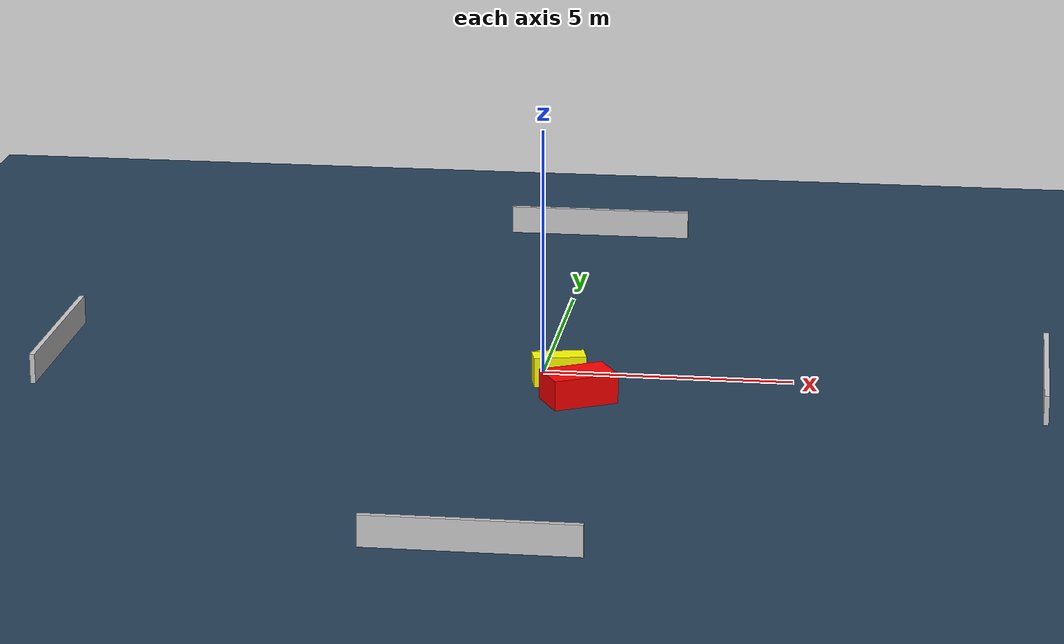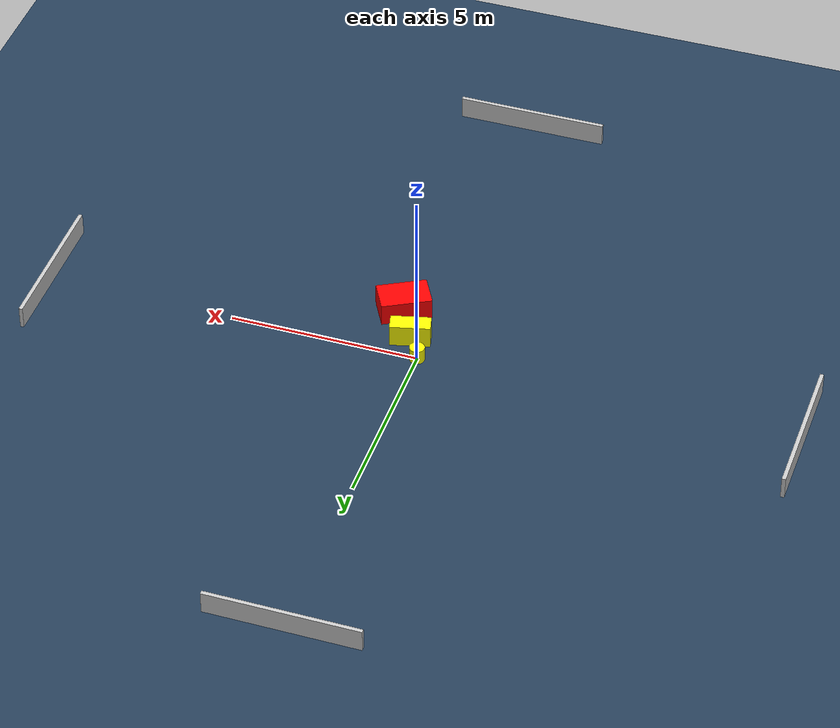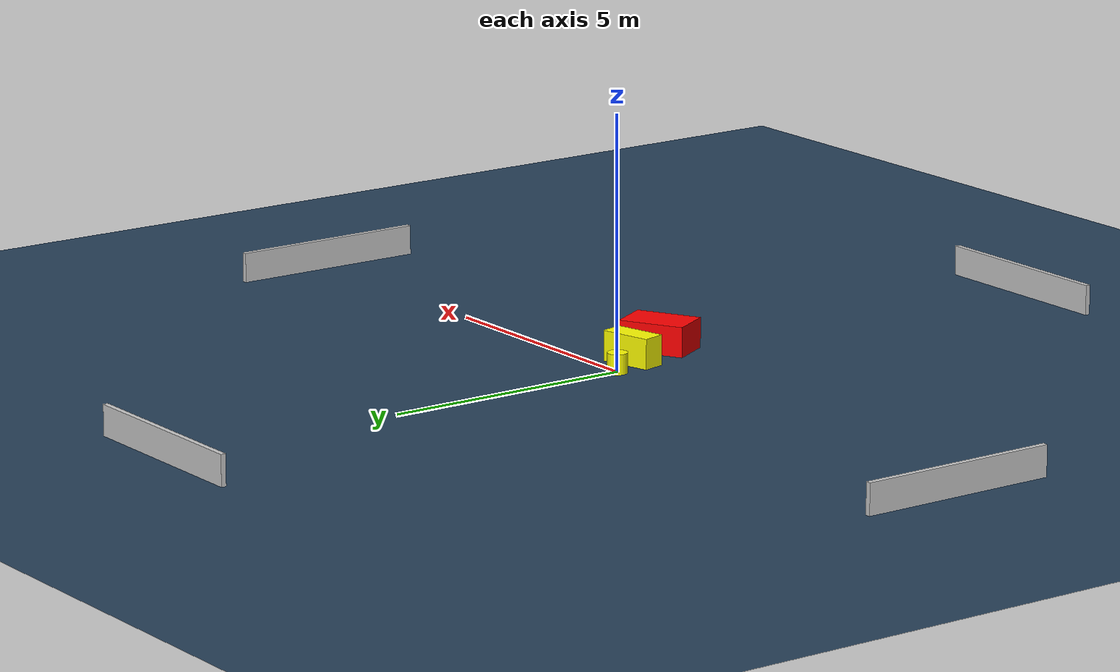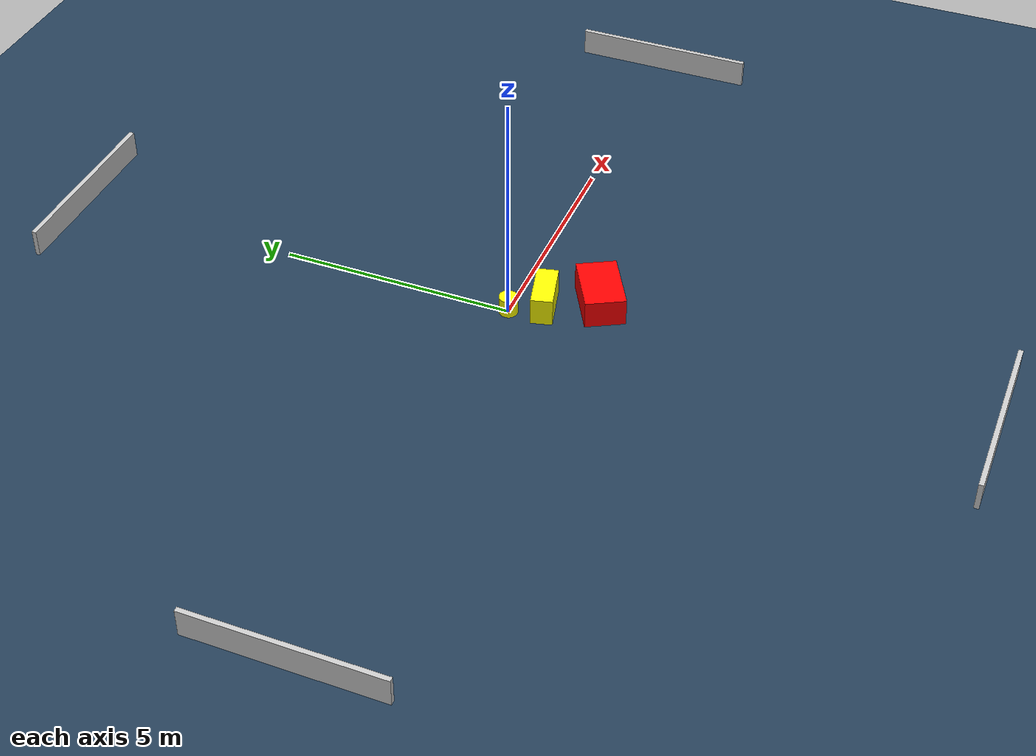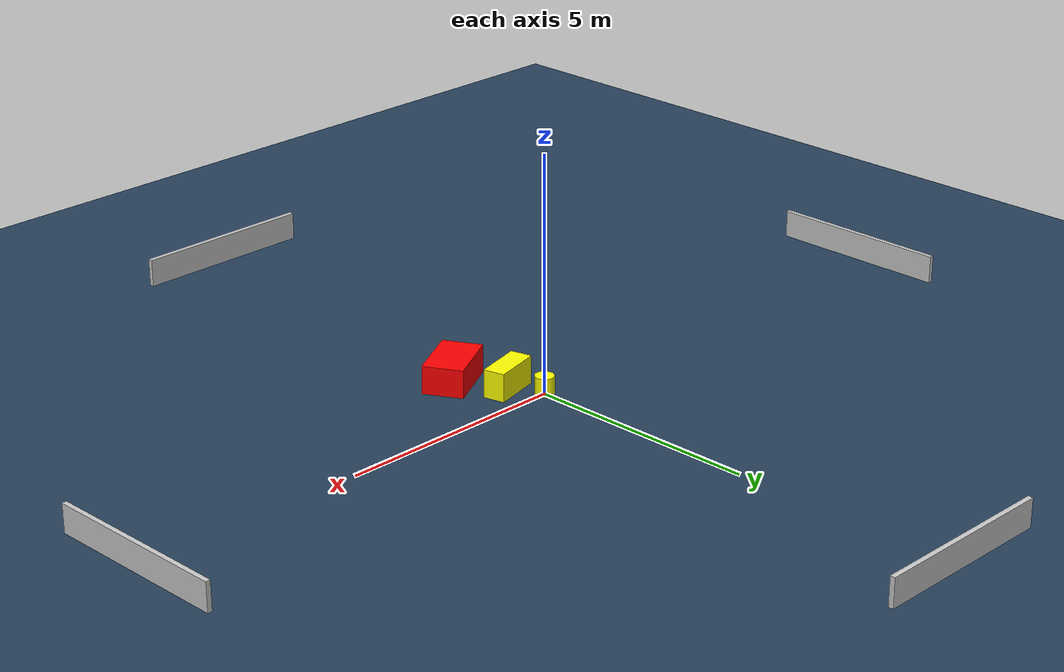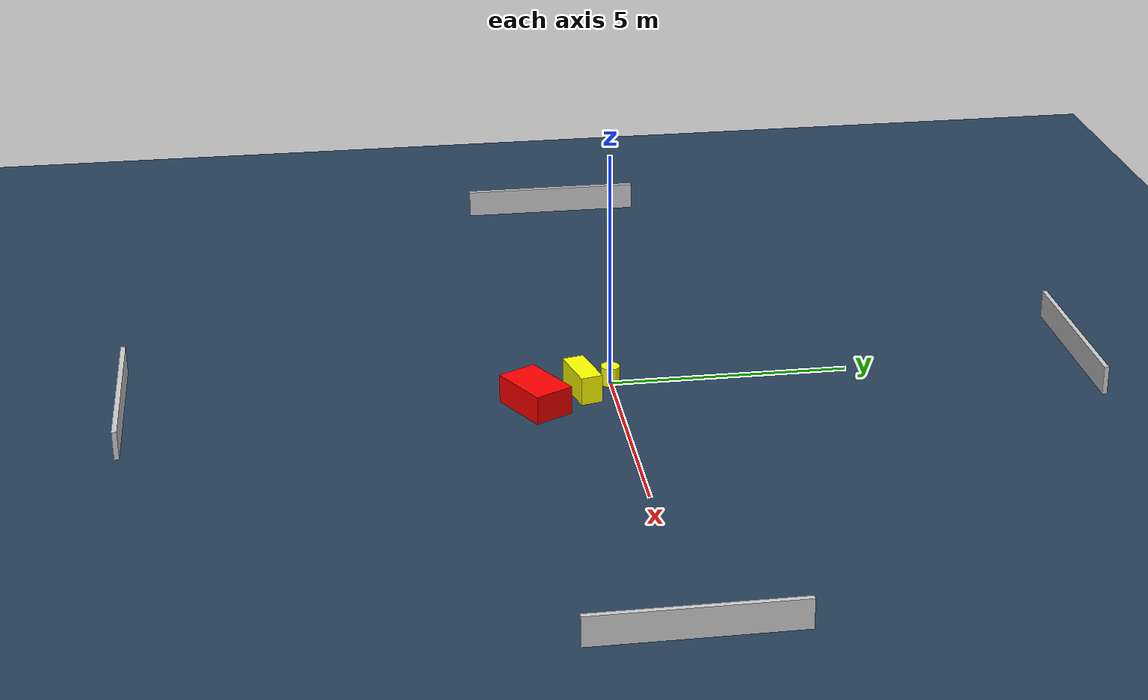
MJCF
<?xml version="1.0" ?>
<mujoco model="generated_environment">
  <option timestep="0.01" integrator="RK4" cone="elliptic"/>
  <default>
    <geom density="1"/>
  </default>
  <asset>
    <texture builtin="gradient" height="3072" name="skybox" rgb1="0.3 0.5 0.7" rgb2="0 0 0" type="skybox" width="512"/>
    <texture builtin="checker" height="300" name="groundplane" rgb1="0.2 0.3 0.4" rgb2="0.1 0.2 0.3" type="2d" width="300"/>
    <material name="groundplane" reflectance="0.2" texrepeat="5 5" texture="groundplane"/>
  </asset>
  <worldbody>
    <light dir="0 0 -1" directional="true" pos="0 0 1.5"/>
    <geom condim="3" friction="0.5 0.005 0.001" material="groundplane" name="floor" pos="0 0 0" size="0 0 0.05" type="plane"/>
    <body name="walls">
      <geom name="wall_1" condim="4" pos="-10.0 0.0 0.3" rgba="0.800000011920929 0.800000011920929 0.800000011920929 1.0" size="0.05 2.0 0.3" type="box"/>
      <geom name="wall_2" condim="4" pos="10.0 0.0 0.3" rgba="0.800000011920929 0.800000011920929 0.800000011920929 1.0" size="0.05 2.0 0.3" type="box"/>
      <geom name="wall_3" condim="4" pos="0.0 -10.0 0.3" rgba="0.800000011920929 0.800000011920929 0.800000011920929 1.0" size="2.0 0.05 0.3" type="box"/>
      <geom name="wall_4" condim="4" pos="0.0 10.0 0.3" rgba="0.800000011920929 0.800000011920929 0.800000011920929 1.0" size="2.0 0.05 0.3" type="box"/>
    </body>
    <body name="robot">
      <joint name="joint_x" type="slide" pos="0 0 0" axis="1 0 0"/>
      <joint name="joint_y" type="slide" pos="0 0 0" axis="0 1 0"/>
      <geom name="robot" type="cylinder" pos="0.0 0.0 0.2" size="0.2 0.2 0.0" mass="5.0" friction="1.0 0.005 0.0001" condim="4" rgba="1.0 1.0 0.0 1.0"/>
    </body>
    <body name="obstacle_1_movable">
      <geom name="obstacle_1_movable" condim="4" pos="0.3895225963424233 -0.6386756889219818 0.3" euler="0 0 283.96364365083235" friction="0.0 0.005 0.001" rgba="1.0 1.0 0.0 1.0" size="0.22853141641903946 0.5253595782047527 0.3" type="box" mass="0.1"/>
      <joint type="free"/>
    </body>
    <body name="obstacle_2_static">
      <geom name="obstacle_2_static" condim="4" pos="0.9059766630610863 -1.6695289822208819 0.3" euler="0 0 118.68275620507194" friction="0.0 0.005 0.001" rgba="1.0 0.0 0.0 1.0" size="0.42683386957147135 0.6636689559586076 0.3" type="box"/>
    </body>
  </worldbody>
  <actuator>
    <motor name="actuator_x" joint="joint_x" gear="1" ctrlrange="-1 1"/>
    <motor name="actuator_y" joint="joint_y" gear="1" ctrlrange="-1 1"/>
  </actuator>
</mujoco>
